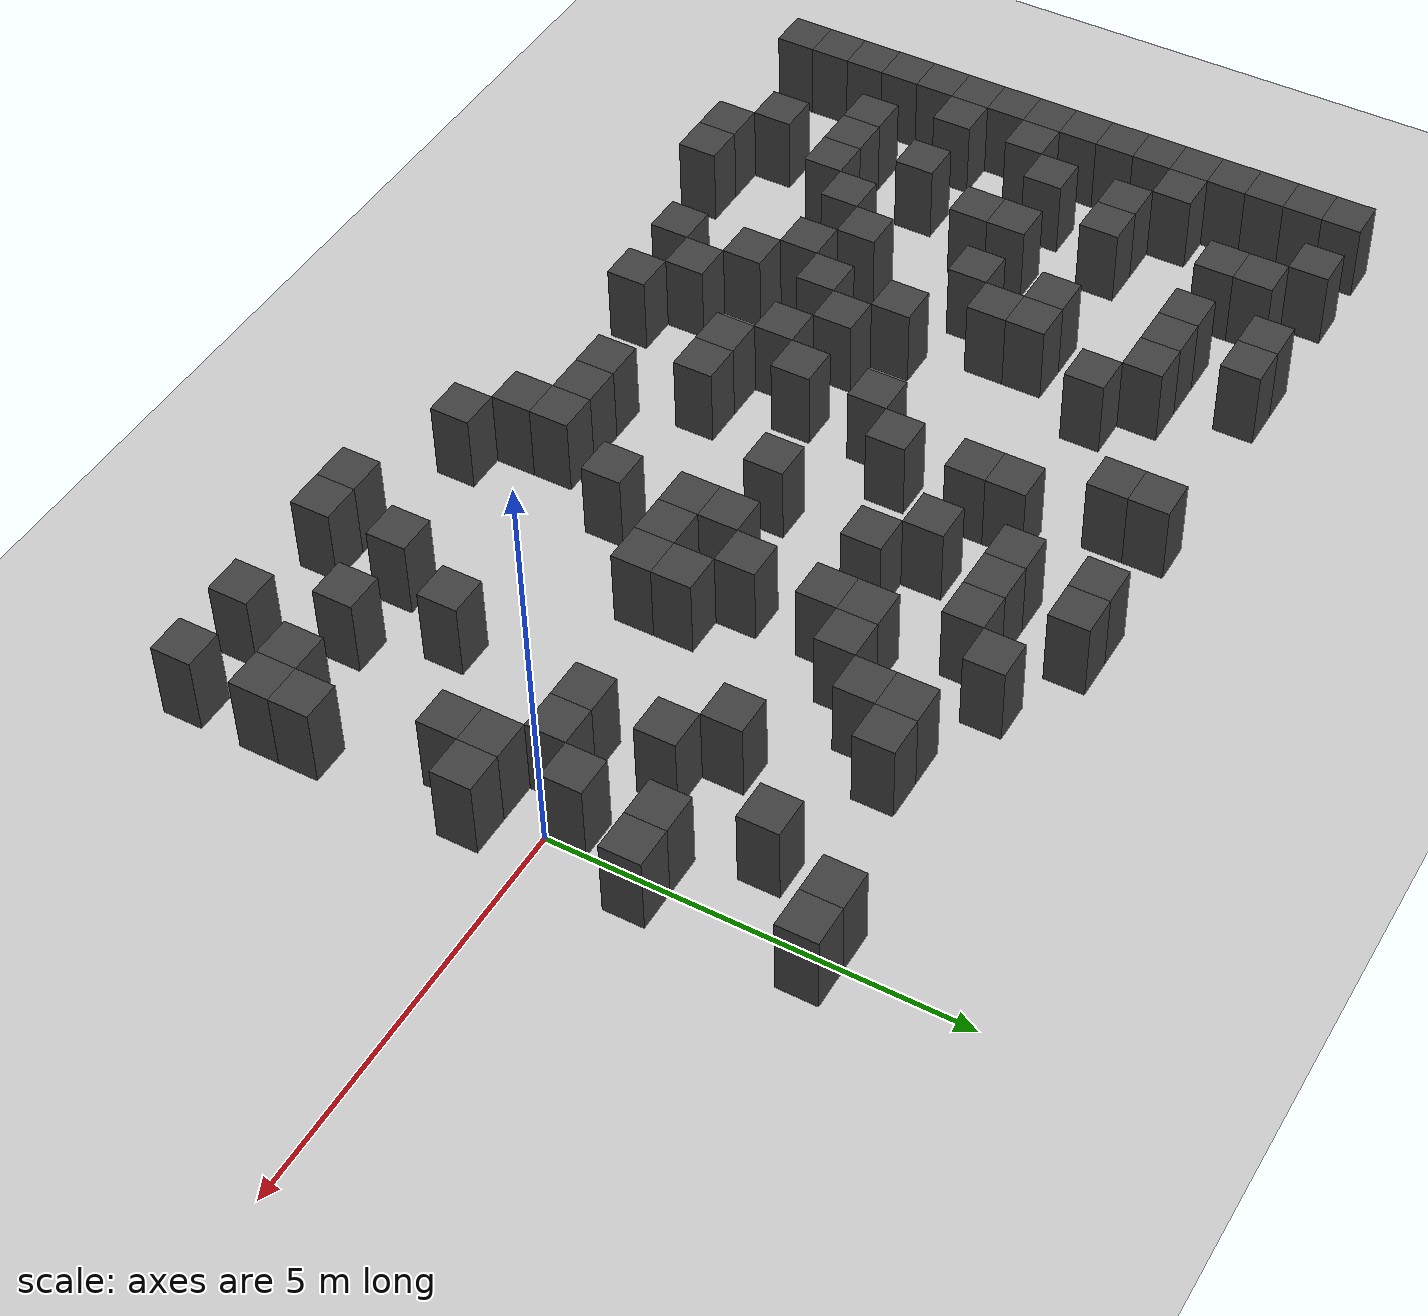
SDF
<sdf version="1.7">
 <world name="map_4390">
  <model name="ground_plane">
   <static>true</static>
   <link name="link">
    <collision name="collision">
     <geometry><plane><normal>0 0 1</normal><size>200 200</size></plane></geometry>
    </collision>
    <visual name="visual">
     <geometry><plane><normal>0 0 1</normal><size>200 200</size></plane></geometry>
     <material><ambient>0.8 0.8 0.8 1</ambient><diffuse>0.8 0.8 0.8 1</diffuse></material>
    </visual>
   </link>
  </model>
  <model name="maze_environment">
   <static>true</static>
   <link name="wall_229">
    <pose>-12.250 3.750 0.500 0 0 0</pose>
    <collision name="col"><geometry><box><size>0.5 0.5 1.0</size></box></geometry></collision>
    <visual name="vis">
     <geometry><box><size>0.5 0.5 1.0</size></box></geometry>
     <material><ambient>0.15 0.15 0.15 1</ambient><diffuse>0.25 0.25 0.25 1</diffuse></material>
    </visual>
   </link>
   <link name="wall_230">
    <pose>-11.250 3.750 0.500 0 0 0</pose>
    <collision name="col"><geometry><box><size>0.5 0.5 1.0</size></box></geometry></collision>
    <visual name="vis">
     <geometry><box><size>0.5 0.5 1.0</size></box></geometry>
     <material><ambient>0.15 0.15 0.15 1</ambient><diffuse>0.25 0.25 0.25 1</diffuse></material>
    </visual>
   </link>
   <link name="wall_231">
    <pose>-9.750 3.750 0.500 0 0 0</pose>
    <collision name="col"><geometry><box><size>0.5 0.5 1.0</size></box></geometry></collision>
    <visual name="vis">
     <geometry><box><size>0.5 0.5 1.0</size></box></geometry>
     <material><ambient>0.15 0.15 0.15 1</ambient><diffuse>0.25 0.25 0.25 1</diffuse></material>
    </visual>
   </link>
   <link name="wall_232">
    <pose>-9.250 3.750 0.500 0 0 0</pose>
    <collision name="col"><geometry><box><size>0.5 0.5 1.0</size></box></geometry></collision>
    <visual name="vis">
     <geometry><box><size>0.5 0.5 1.0</size></box></geometry>
     <material><ambient>0.15 0.15 0.15 1</ambient><diffuse>0.25 0.25 0.25 1</diffuse></material>
    </visual>
   </link>
   <link name="wall_233">
    <pose>-6.750 3.750 0.500 0 0 0</pose>
    <collision name="col"><geometry><box><size>0.5 0.5 1.0</size></box></geometry></collision>
    <visual name="vis">
     <geometry><box><size>0.5 0.5 1.0</size></box></geometry>
     <material><ambient>0.15 0.15 0.15 1</ambient><diffuse>0.25 0.25 0.25 1</diffuse></material>
    </visual>
   </link>
   <link name="wall_234">
    <pose>-5.250 3.750 0.500 0 0 0</pose>
    <collision name="col"><geometry><box><size>0.5 0.5 1.0</size></box></geometry></collision>
    <visual name="vis">
     <geometry><box><size>0.5 0.5 1.0</size></box></geometry>
     <material><ambient>0.15 0.15 0.15 1</ambient><diffuse>0.25 0.25 0.25 1</diffuse></material>
    </visual>
   </link>
   <link name="wall_235">
    <pose>-4.750 3.750 0.500 0 0 0</pose>
    <collision name="col"><geometry><box><size>0.5 0.5 1.0</size></box></geometry></collision>
    <visual name="vis">
     <geometry><box><size>0.5 0.5 1.0</size></box></geometry>
     <material><ambient>0.15 0.15 0.15 1</ambient><diffuse>0.25 0.25 0.25 1</diffuse></material>
    </visual>
   </link>
   <link name="wall_242">
    <pose>-12.250 3.250 0.500 0 0 0</pose>
    <collision name="col"><geometry><box><size>0.5 0.5 1.0</size></box></geometry></collision>
    <visual name="vis">
     <geometry><box><size>0.5 0.5 1.0</size></box></geometry>
     <material><ambient>0.15 0.15 0.15 1</ambient><diffuse>0.25 0.25 0.25 1</diffuse></material>
    </visual>
   </link>
   <link name="wall_243">
    <pose>-10.750 3.250 0.500 0 0 0</pose>
    <collision name="col"><geometry><box><size>0.5 0.5 1.0</size></box></geometry></collision>
    <visual name="vis">
     <geometry><box><size>0.5 0.5 1.0</size></box></geometry>
     <material><ambient>0.15 0.15 0.15 1</ambient><diffuse>0.25 0.25 0.25 1</diffuse></material>
    </visual>
   </link>
   <link name="wall_244">
    <pose>-6.750 3.250 0.500 0 0 0</pose>
    <collision name="col"><geometry><box><size>0.5 0.5 1.0</size></box></geometry></collision>
    <visual name="vis">
     <geometry><box><size>0.5 0.5 1.0</size></box></geometry>
     <material><ambient>0.15 0.15 0.15 1</ambient><diffuse>0.25 0.25 0.25 1</diffuse></material>
    </visual>
   </link>
   <link name="wall_245">
    <pose>-3.750 3.250 0.500 0 0 0</pose>
    <collision name="col"><geometry><box><size>0.5 0.5 1.0</size></box></geometry></collision>
    <visual name="vis">
     <geometry><box><size>0.5 0.5 1.0</size></box></geometry>
     <material><ambient>0.15 0.15 0.15 1</ambient><diffuse>0.25 0.25 0.25 1</diffuse></material>
    </visual>
   </link>
   <link name="wall_246">
    <pose>-0.250 3.250 0.500 0 0 0</pose>
    <collision name="col"><geometry><box><size>0.5 0.5 1.0</size></box></geometry></collision>
    <visual name="vis">
     <geometry><box><size>0.5 0.5 1.0</size></box></geometry>
     <material><ambient>0.15 0.15 0.15 1</ambient><diffuse>0.25 0.25 0.25 1</diffuse></material>
    </visual>
   </link>
   <link name="wall_247">
    <pose>0.250 3.250 0.500 0 0 0</pose>
    <collision name="col"><geometry><box><size>0.5 0.5 1.0</size></box></geometry></collision>
    <visual name="vis">
     <geometry><box><size>0.5 0.5 1.0</size></box></geometry>
     <material><ambient>0.15 0.15 0.15 1</ambient><diffuse>0.25 0.25 0.25 1</diffuse></material>
    </visual>
   </link>
   <link name="wall_251">
    <pose>-12.250 2.750 0.500 0 0 0</pose>
    <collision name="col"><geometry><box><size>0.5 0.5 1.0</size></box></geometry></collision>
    <visual name="vis">
     <geometry><box><size>0.5 0.5 1.0</size></box></geometry>
     <material><ambient>0.15 0.15 0.15 1</ambient><diffuse>0.25 0.25 0.25 1</diffuse></material>
    </visual>
   </link>
   <link name="wall_252">
    <pose>-10.750 2.750 0.500 0 0 0</pose>
    <collision name="col"><geometry><box><size>0.5 0.5 1.0</size></box></geometry></collision>
    <visual name="vis">
     <geometry><box><size>0.5 0.5 1.0</size></box></geometry>
     <material><ambient>0.15 0.15 0.15 1</ambient><diffuse>0.25 0.25 0.25 1</diffuse></material>
    </visual>
   </link>
   <link name="wall_253">
    <pose>-9.750 2.750 0.500 0 0 0</pose>
    <collision name="col"><geometry><box><size>0.5 0.5 1.0</size></box></geometry></collision>
    <visual name="vis">
     <geometry><box><size>0.5 0.5 1.0</size></box></geometry>
     <material><ambient>0.15 0.15 0.15 1</ambient><diffuse>0.25 0.25 0.25 1</diffuse></material>
    </visual>
   </link>
   <link name="wall_254">
    <pose>-9.250 2.750 0.500 0 0 0</pose>
    <collision name="col"><geometry><box><size>0.5 0.5 1.0</size></box></geometry></collision>
    <visual name="vis">
     <geometry><box><size>0.5 0.5 1.0</size></box></geometry>
     <material><ambient>0.15 0.15 0.15 1</ambient><diffuse>0.25 0.25 0.25 1</diffuse></material>
    </visual>
   </link>
   <link name="wall_255">
    <pose>-8.750 2.750 0.500 0 0 0</pose>
    <collision name="col"><geometry><box><size>0.5 0.5 1.0</size></box></geometry></collision>
    <visual name="vis">
     <geometry><box><size>0.5 0.5 1.0</size></box></geometry>
     <material><ambient>0.15 0.15 0.15 1</ambient><diffuse>0.25 0.25 0.25 1</diffuse></material>
    </visual>
   </link>
   <link name="wall_256">
    <pose>-5.250 2.750 0.500 0 0 0</pose>
    <collision name="col"><geometry><box><size>0.5 0.5 1.0</size></box></geometry></collision>
    <visual name="vis">
     <geometry><box><size>0.5 0.5 1.0</size></box></geometry>
     <material><ambient>0.15 0.15 0.15 1</ambient><diffuse>0.25 0.25 0.25 1</diffuse></material>
    </visual>
   </link>
   <link name="wall_257">
    <pose>-4.750 2.750 0.500 0 0 0</pose>
    <collision name="col"><geometry><box><size>0.5 0.5 1.0</size></box></geometry></collision>
    <visual name="vis">
     <geometry><box><size>0.5 0.5 1.0</size></box></geometry>
     <material><ambient>0.15 0.15 0.15 1</ambient><diffuse>0.25 0.25 0.25 1</diffuse></material>
    </visual>
   </link>
   <link name="wall_258">
    <pose>-4.250 2.750 0.500 0 0 0</pose>
    <collision name="col"><geometry><box><size>0.5 0.5 1.0</size></box></geometry></collision>
    <visual name="vis">
     <geometry><box><size>0.5 0.5 1.0</size></box></geometry>
     <material><ambient>0.15 0.15 0.15 1</ambient><diffuse>0.25 0.25 0.25 1</diffuse></material>
    </visual>
   </link>
   <link name="wall_259">
    <pose>-2.750 2.750 0.500 0 0 0</pose>
    <collision name="col"><geometry><box><size>0.5 0.5 1.0</size></box></geometry></collision>
    <visual name="vis">
     <geometry><box><size>0.5 0.5 1.0</size></box></geometry>
     <material><ambient>0.15 0.15 0.15 1</ambient><diffuse>0.25 0.25 0.25 1</diffuse></material>
    </visual>
   </link>
   <link name="wall_260">
    <pose>-2.250 2.750 0.500 0 0 0</pose>
    <collision name="col"><geometry><box><size>0.5 0.5 1.0</size></box></geometry></collision>
    <visual name="vis">
     <geometry><box><size>0.5 0.5 1.0</size></box></geometry>
     <material><ambient>0.15 0.15 0.15 1</ambient><diffuse>0.25 0.25 0.25 1</diffuse></material>
    </visual>
   </link>
   <link name="wall_268">
    <pose>-12.250 2.250 0.500 0 0 0</pose>
    <collision name="col"><geometry><box><size>0.5 0.5 1.0</size></box></geometry></collision>
    <visual name="vis">
     <geometry><box><size>0.5 0.5 1.0</size></box></geometry>
     <material><ambient>0.15 0.15 0.15 1</ambient><diffuse>0.25 0.25 0.25 1</diffuse></material>
    </visual>
   </link>
   <link name="wall_269">
    <pose>-8.250 2.250 0.500 0 0 0</pose>
    <collision name="col"><geometry><box><size>0.5 0.5 1.0</size></box></geometry></collision>
    <visual name="vis">
     <geometry><box><size>0.5 0.5 1.0</size></box></geometry>
     <material><ambient>0.15 0.15 0.15 1</ambient><diffuse>0.25 0.25 0.25 1</diffuse></material>
    </visual>
   </link>
   <link name="wall_270">
    <pose>-6.250 2.250 0.500 0 0 0</pose>
    <collision name="col"><geometry><box><size>0.5 0.5 1.0</size></box></geometry></collision>
    <visual name="vis">
     <geometry><box><size>0.5 0.5 1.0</size></box></geometry>
     <material><ambient>0.15 0.15 0.15 1</ambient><diffuse>0.25 0.25 0.25 1</diffuse></material>
    </visual>
   </link>
   <link name="wall_271">
    <pose>-2.750 2.250 0.500 0 0 0</pose>
    <collision name="col"><geometry><box><size>0.5 0.5 1.0</size></box></geometry></collision>
    <visual name="vis">
     <geometry><box><size>0.5 0.5 1.0</size></box></geometry>
     <material><ambient>0.15 0.15 0.15 1</ambient><diffuse>0.25 0.25 0.25 1</diffuse></material>
    </visual>
   </link>
   <link name="wall_272">
    <pose>-0.750 2.250 0.500 0 0 0</pose>
    <collision name="col"><geometry><box><size>0.5 0.5 1.0</size></box></geometry></collision>
    <visual name="vis">
     <geometry><box><size>0.5 0.5 1.0</size></box></geometry>
     <material><ambient>0.15 0.15 0.15 1</ambient><diffuse>0.25 0.25 0.25 1</diffuse></material>
    </visual>
   </link>
   <link name="wall_279">
    <pose>-12.250 1.750 0.500 0 0 0</pose>
    <collision name="col"><geometry><box><size>0.5 0.5 1.0</size></box></geometry></collision>
    <visual name="vis">
     <geometry><box><size>0.5 0.5 1.0</size></box></geometry>
     <material><ambient>0.15 0.15 0.15 1</ambient><diffuse>0.25 0.25 0.25 1</diffuse></material>
    </visual>
   </link>
   <link name="wall_280">
    <pose>-11.750 1.750 0.500 0 0 0</pose>
    <collision name="col"><geometry><box><size>0.5 0.5 1.0</size></box></geometry></collision>
    <visual name="vis">
     <geometry><box><size>0.5 0.5 1.0</size></box></geometry>
     <material><ambient>0.15 0.15 0.15 1</ambient><diffuse>0.25 0.25 0.25 1</diffuse></material>
    </visual>
   </link>
   <link name="wall_281">
    <pose>-6.250 1.750 0.500 0 0 0</pose>
    <collision name="col"><geometry><box><size>0.5 0.5 1.0</size></box></geometry></collision>
    <visual name="vis">
     <geometry><box><size>0.5 0.5 1.0</size></box></geometry>
     <material><ambient>0.15 0.15 0.15 1</ambient><diffuse>0.25 0.25 0.25 1</diffuse></material>
    </visual>
   </link>
   <link name="wall_282">
    <pose>-5.250 1.750 0.500 0 0 0</pose>
    <collision name="col"><geometry><box><size>0.5 0.5 1.0</size></box></geometry></collision>
    <visual name="vis">
     <geometry><box><size>0.5 0.5 1.0</size></box></geometry>
     <material><ambient>0.15 0.15 0.15 1</ambient><diffuse>0.25 0.25 0.25 1</diffuse></material>
    </visual>
   </link>
   <link name="wall_283">
    <pose>-3.750 1.750 0.500 0 0 0</pose>
    <collision name="col"><geometry><box><size>0.5 0.5 1.0</size></box></geometry></collision>
    <visual name="vis">
     <geometry><box><size>0.5 0.5 1.0</size></box></geometry>
     <material><ambient>0.15 0.15 0.15 1</ambient><diffuse>0.25 0.25 0.25 1</diffuse></material>
    </visual>
   </link>
   <link name="wall_284">
    <pose>-3.250 1.750 0.500 0 0 0</pose>
    <collision name="col"><geometry><box><size>0.5 0.5 1.0</size></box></geometry></collision>
    <visual name="vis">
     <geometry><box><size>0.5 0.5 1.0</size></box></geometry>
     <material><ambient>0.15 0.15 0.15 1</ambient><diffuse>0.25 0.25 0.25 1</diffuse></material>
    </visual>
   </link>
   <link name="wall_289">
    <pose>-12.250 1.250 0.500 0 0 0</pose>
    <collision name="col"><geometry><box><size>0.5 0.5 1.0</size></box></geometry></collision>
    <visual name="vis">
     <geometry><box><size>0.5 0.5 1.0</size></box></geometry>
     <material><ambient>0.15 0.15 0.15 1</ambient><diffuse>0.25 0.25 0.25 1</diffuse></material>
    </visual>
   </link>
   <link name="wall_290">
    <pose>-11.250 1.250 0.500 0 0 0</pose>
    <collision name="col"><geometry><box><size>0.5 0.5 1.0</size></box></geometry></collision>
    <visual name="vis">
     <geometry><box><size>0.5 0.5 1.0</size></box></geometry>
     <material><ambient>0.15 0.15 0.15 1</ambient><diffuse>0.25 0.25 0.25 1</diffuse></material>
    </visual>
   </link>
   <link name="wall_291">
    <pose>-10.750 1.250 0.500 0 0 0</pose>
    <collision name="col"><geometry><box><size>0.5 0.5 1.0</size></box></geometry></collision>
    <visual name="vis">
     <geometry><box><size>0.5 0.5 1.0</size></box></geometry>
     <material><ambient>0.15 0.15 0.15 1</ambient><diffuse>0.25 0.25 0.25 1</diffuse></material>
    </visual>
   </link>
   <link name="wall_292">
    <pose>-9.250 1.250 0.500 0 0 0</pose>
    <collision name="col"><geometry><box><size>0.5 0.5 1.0</size></box></geometry></collision>
    <visual name="vis">
     <geometry><box><size>0.5 0.5 1.0</size></box></geometry>
     <material><ambient>0.15 0.15 0.15 1</ambient><diffuse>0.25 0.25 0.25 1</diffuse></material>
    </visual>
   </link>
   <link name="wall_293">
    <pose>-8.750 1.250 0.500 0 0 0</pose>
    <collision name="col"><geometry><box><size>0.5 0.5 1.0</size></box></geometry></collision>
    <visual name="vis">
     <geometry><box><size>0.5 0.5 1.0</size></box></geometry>
     <material><ambient>0.15 0.15 0.15 1</ambient><diffuse>0.25 0.25 0.25 1</diffuse></material>
    </visual>
   </link>
   <link name="wall_294">
    <pose>-4.750 1.250 0.500 0 0 0</pose>
    <collision name="col"><geometry><box><size>0.5 0.5 1.0</size></box></geometry></collision>
    <visual name="vis">
     <geometry><box><size>0.5 0.5 1.0</size></box></geometry>
     <material><ambient>0.15 0.15 0.15 1</ambient><diffuse>0.25 0.25 0.25 1</diffuse></material>
    </visual>
   </link>
   <link name="wall_295">
    <pose>-3.750 1.250 0.500 0 0 0</pose>
    <collision name="col"><geometry><box><size>0.5 0.5 1.0</size></box></geometry></collision>
    <visual name="vis">
     <geometry><box><size>0.5 0.5 1.0</size></box></geometry>
     <material><ambient>0.15 0.15 0.15 1</ambient><diffuse>0.25 0.25 0.25 1</diffuse></material>
    </visual>
   </link>
   <link name="wall_296">
    <pose>-1.750 1.250 0.500 0 0 0</pose>
    <collision name="col"><geometry><box><size>0.5 0.5 1.0</size></box></geometry></collision>
    <visual name="vis">
     <geometry><box><size>0.5 0.5 1.0</size></box></geometry>
     <material><ambient>0.15 0.15 0.15 1</ambient><diffuse>0.25 0.25 0.25 1</diffuse></material>
    </visual>
   </link>
   <link name="wall_297">
    <pose>-0.250 1.250 0.500 0 0 0</pose>
    <collision name="col"><geometry><box><size>0.5 0.5 1.0</size></box></geometry></collision>
    <visual name="vis">
     <geometry><box><size>0.5 0.5 1.0</size></box></geometry>
     <material><ambient>0.15 0.15 0.15 1</ambient><diffuse>0.25 0.25 0.25 1</diffuse></material>
    </visual>
   </link>
   <link name="wall_298">
    <pose>0.250 1.250 0.500 0 0 0</pose>
    <collision name="col"><geometry><box><size>0.5 0.5 1.0</size></box></geometry></collision>
    <visual name="vis">
     <geometry><box><size>0.5 0.5 1.0</size></box></geometry>
     <material><ambient>0.15 0.15 0.15 1</ambient><diffuse>0.25 0.25 0.25 1</diffuse></material>
    </visual>
   </link>
   <link name="wall_303">
    <pose>-12.250 0.750 0.500 0 0 0</pose>
    <collision name="col"><geometry><box><size>0.5 0.5 1.0</size></box></geometry></collision>
    <visual name="vis">
     <geometry><box><size>0.5 0.5 1.0</size></box></geometry>
     <material><ambient>0.15 0.15 0.15 1</ambient><diffuse>0.25 0.25 0.25 1</diffuse></material>
    </visual>
   </link>
   <link name="wall_304">
    <pose>-8.750 0.750 0.500 0 0 0</pose>
    <collision name="col"><geometry><box><size>0.5 0.5 1.0</size></box></geometry></collision>
    <visual name="vis">
     <geometry><box><size>0.5 0.5 1.0</size></box></geometry>
     <material><ambient>0.15 0.15 0.15 1</ambient><diffuse>0.25 0.25 0.25 1</diffuse></material>
    </visual>
   </link>
   <link name="wall_305">
    <pose>-6.250 0.750 0.500 0 0 0</pose>
    <collision name="col"><geometry><box><size>0.5 0.5 1.0</size></box></geometry></collision>
    <visual name="vis">
     <geometry><box><size>0.5 0.5 1.0</size></box></geometry>
     <material><ambient>0.15 0.15 0.15 1</ambient><diffuse>0.25 0.25 0.25 1</diffuse></material>
    </visual>
   </link>
   <link name="wall_306">
    <pose>-1.250 0.750 0.500 0 0 0</pose>
    <collision name="col"><geometry><box><size>0.5 0.5 1.0</size></box></geometry></collision>
    <visual name="vis">
     <geometry><box><size>0.5 0.5 1.0</size></box></geometry>
     <material><ambient>0.15 0.15 0.15 1</ambient><diffuse>0.25 0.25 0.25 1</diffuse></material>
    </visual>
   </link>
   <link name="wall_315">
    <pose>-12.250 0.250 0.500 0 0 0</pose>
    <collision name="col"><geometry><box><size>0.5 0.5 1.0</size></box></geometry></collision>
    <visual name="vis">
     <geometry><box><size>0.5 0.5 1.0</size></box></geometry>
     <material><ambient>0.15 0.15 0.15 1</ambient><diffuse>0.25 0.25 0.25 1</diffuse></material>
    </visual>
   </link>
   <link name="wall_316">
    <pose>-11.250 0.250 0.500 0 0 0</pose>
    <collision name="col"><geometry><box><size>0.5 0.5 1.0</size></box></geometry></collision>
    <visual name="vis">
     <geometry><box><size>0.5 0.5 1.0</size></box></geometry>
     <material><ambient>0.15 0.15 0.15 1</ambient><diffuse>0.25 0.25 0.25 1</diffuse></material>
    </visual>
   </link>
   <link name="wall_317">
    <pose>-10.250 0.250 0.500 0 0 0</pose>
    <collision name="col"><geometry><box><size>0.5 0.5 1.0</size></box></geometry></collision>
    <visual name="vis">
     <geometry><box><size>0.5 0.5 1.0</size></box></geometry>
     <material><ambient>0.15 0.15 0.15 1</ambient><diffuse>0.25 0.25 0.25 1</diffuse></material>
    </visual>
   </link>
   <link name="wall_318">
    <pose>-9.250 0.250 0.500 0 0 0</pose>
    <collision name="col"><geometry><box><size>0.5 0.5 1.0</size></box></geometry></collision>
    <visual name="vis">
     <geometry><box><size>0.5 0.5 1.0</size></box></geometry>
     <material><ambient>0.15 0.15 0.15 1</ambient><diffuse>0.25 0.25 0.25 1</diffuse></material>
    </visual>
   </link>
   <link name="wall_319">
    <pose>-6.750 0.250 0.500 0 0 0</pose>
    <collision name="col"><geometry><box><size>0.5 0.5 1.0</size></box></geometry></collision>
    <visual name="vis">
     <geometry><box><size>0.5 0.5 1.0</size></box></geometry>
     <material><ambient>0.15 0.15 0.15 1</ambient><diffuse>0.25 0.25 0.25 1</diffuse></material>
    </visual>
   </link>
   <link name="wall_320">
    <pose>-3.750 0.250 0.500 0 0 0</pose>
    <collision name="col"><geometry><box><size>0.5 0.5 1.0</size></box></geometry></collision>
    <visual name="vis">
     <geometry><box><size>0.5 0.5 1.0</size></box></geometry>
     <material><ambient>0.15 0.15 0.15 1</ambient><diffuse>0.25 0.25 0.25 1</diffuse></material>
    </visual>
   </link>
   <link name="wall_321">
    <pose>-0.250 0.250 0.500 0 0 0</pose>
    <collision name="col"><geometry><box><size>0.5 0.5 1.0</size></box></geometry></collision>
    <visual name="vis">
     <geometry><box><size>0.5 0.5 1.0</size></box></geometry>
     <material><ambient>0.15 0.15 0.15 1</ambient><diffuse>0.25 0.25 0.25 1</diffuse></material>
    </visual>
   </link>
   <link name="wall_324">
    <pose>-12.250 -0.250 0.500 0 0 0</pose>
    <collision name="col"><geometry><box><size>0.5 0.5 1.0</size></box></geometry></collision>
    <visual name="vis">
     <geometry><box><size>0.5 0.5 1.0</size></box></geometry>
     <material><ambient>0.15 0.15 0.15 1</ambient><diffuse>0.25 0.25 0.25 1</diffuse></material>
    </visual>
   </link>
   <link name="wall_325">
    <pose>-11.750 -0.250 0.500 0 0 0</pose>
    <collision name="col"><geometry><box><size>0.5 0.5 1.0</size></box></geometry></collision>
    <visual name="vis">
     <geometry><box><size>0.5 0.5 1.0</size></box></geometry>
     <material><ambient>0.15 0.15 0.15 1</ambient><diffuse>0.25 0.25 0.25 1</diffuse></material>
    </visual>
   </link>
   <link name="wall_326">
    <pose>-10.250 -0.250 0.500 0 0 0</pose>
    <collision name="col"><geometry><box><size>0.5 0.5 1.0</size></box></geometry></collision>
    <visual name="vis">
     <geometry><box><size>0.5 0.5 1.0</size></box></geometry>
     <material><ambient>0.15 0.15 0.15 1</ambient><diffuse>0.25 0.25 0.25 1</diffuse></material>
    </visual>
   </link>
   <link name="wall_327">
    <pose>-8.250 -0.250 0.500 0 0 0</pose>
    <collision name="col"><geometry><box><size>0.5 0.5 1.0</size></box></geometry></collision>
    <visual name="vis">
     <geometry><box><size>0.5 0.5 1.0</size></box></geometry>
     <material><ambient>0.15 0.15 0.15 1</ambient><diffuse>0.25 0.25 0.25 1</diffuse></material>
    </visual>
   </link>
   <link name="wall_328">
    <pose>-5.250 -0.250 0.500 0 0 0</pose>
    <collision name="col"><geometry><box><size>0.5 0.5 1.0</size></box></geometry></collision>
    <visual name="vis">
     <geometry><box><size>0.5 0.5 1.0</size></box></geometry>
     <material><ambient>0.15 0.15 0.15 1</ambient><diffuse>0.25 0.25 0.25 1</diffuse></material>
    </visual>
   </link>
   <link name="wall_329">
    <pose>-4.250 -0.250 0.500 0 0 0</pose>
    <collision name="col"><geometry><box><size>0.5 0.5 1.0</size></box></geometry></collision>
    <visual name="vis">
     <geometry><box><size>0.5 0.5 1.0</size></box></geometry>
     <material><ambient>0.15 0.15 0.15 1</ambient><diffuse>0.25 0.25 0.25 1</diffuse></material>
    </visual>
   </link>
   <link name="wall_330">
    <pose>-3.250 -0.250 0.500 0 0 0</pose>
    <collision name="col"><geometry><box><size>0.5 0.5 1.0</size></box></geometry></collision>
    <visual name="vis">
     <geometry><box><size>0.5 0.5 1.0</size></box></geometry>
     <material><ambient>0.15 0.15 0.15 1</ambient><diffuse>0.25 0.25 0.25 1</diffuse></material>
    </visual>
   </link>
   <link name="wall_331">
    <pose>-1.250 -0.250 0.500 0 0 0</pose>
    <collision name="col"><geometry><box><size>0.5 0.5 1.0</size></box></geometry></collision>
    <visual name="vis">
     <geometry><box><size>0.5 0.5 1.0</size></box></geometry>
     <material><ambient>0.15 0.15 0.15 1</ambient><diffuse>0.25 0.25 0.25 1</diffuse></material>
    </visual>
   </link>
   <link name="wall_332">
    <pose>-0.750 -0.250 0.500 0 0 0</pose>
    <collision name="col"><geometry><box><size>0.5 0.5 1.0</size></box></geometry></collision>
    <visual name="vis">
     <geometry><box><size>0.5 0.5 1.0</size></box></geometry>
     <material><ambient>0.15 0.15 0.15 1</ambient><diffuse>0.25 0.25 0.25 1</diffuse></material>
    </visual>
   </link>
   <link name="wall_339">
    <pose>-12.250 -0.750 0.500 0 0 0</pose>
    <collision name="col"><geometry><box><size>0.5 0.5 1.0</size></box></geometry></collision>
    <visual name="vis">
     <geometry><box><size>0.5 0.5 1.0</size></box></geometry>
     <material><ambient>0.15 0.15 0.15 1</ambient><diffuse>0.25 0.25 0.25 1</diffuse></material>
    </visual>
   </link>
   <link name="wall_340">
    <pose>-7.750 -0.750 0.500 0 0 0</pose>
    <collision name="col"><geometry><box><size>0.5 0.5 1.0</size></box></geometry></collision>
    <visual name="vis">
     <geometry><box><size>0.5 0.5 1.0</size></box></geometry>
     <material><ambient>0.15 0.15 0.15 1</ambient><diffuse>0.25 0.25 0.25 1</diffuse></material>
    </visual>
   </link>
   <link name="wall_341">
    <pose>-6.750 -0.750 0.500 0 0 0</pose>
    <collision name="col"><geometry><box><size>0.5 0.5 1.0</size></box></geometry></collision>
    <visual name="vis">
     <geometry><box><size>0.5 0.5 1.0</size></box></geometry>
     <material><ambient>0.15 0.15 0.15 1</ambient><diffuse>0.25 0.25 0.25 1</diffuse></material>
    </visual>
   </link>
   <link name="wall_342">
    <pose>-4.250 -0.750 0.500 0 0 0</pose>
    <collision name="col"><geometry><box><size>0.5 0.5 1.0</size></box></geometry></collision>
    <visual name="vis">
     <geometry><box><size>0.5 0.5 1.0</size></box></geometry>
     <material><ambient>0.15 0.15 0.15 1</ambient><diffuse>0.25 0.25 0.25 1</diffuse></material>
    </visual>
   </link>
   <link name="wall_343">
    <pose>-3.750 -0.750 0.500 0 0 0</pose>
    <collision name="col"><geometry><box><size>0.5 0.5 1.0</size></box></geometry></collision>
    <visual name="vis">
     <geometry><box><size>0.5 0.5 1.0</size></box></geometry>
     <material><ambient>0.15 0.15 0.15 1</ambient><diffuse>0.25 0.25 0.25 1</diffuse></material>
    </visual>
   </link>
   <link name="wall_344">
    <pose>-3.250 -0.750 0.500 0 0 0</pose>
    <collision name="col"><geometry><box><size>0.5 0.5 1.0</size></box></geometry></collision>
    <visual name="vis">
     <geometry><box><size>0.5 0.5 1.0</size></box></geometry>
     <material><ambient>0.15 0.15 0.15 1</ambient><diffuse>0.25 0.25 0.25 1</diffuse></material>
    </visual>
   </link>
   <link name="wall_345">
    <pose>-0.250 -0.750 0.500 0 0 0</pose>
    <collision name="col"><geometry><box><size>0.5 0.5 1.0</size></box></geometry></collision>
    <visual name="vis">
     <geometry><box><size>0.5 0.5 1.0</size></box></geometry>
     <material><ambient>0.15 0.15 0.15 1</ambient><diffuse>0.25 0.25 0.25 1</diffuse></material>
    </visual>
   </link>
   <link name="wall_346">
    <pose>0.250 -0.750 0.500 0 0 0</pose>
    <collision name="col"><geometry><box><size>0.5 0.5 1.0</size></box></geometry></collision>
    <visual name="vis">
     <geometry><box><size>0.5 0.5 1.0</size></box></geometry>
     <material><ambient>0.15 0.15 0.15 1</ambient><diffuse>0.25 0.25 0.25 1</diffuse></material>
    </visual>
   </link>
   <link name="wall_353">
    <pose>-12.250 -1.250 0.500 0 0 0</pose>
    <collision name="col"><geometry><box><size>0.5 0.5 1.0</size></box></geometry></collision>
    <visual name="vis">
     <geometry><box><size>0.5 0.5 1.0</size></box></geometry>
     <material><ambient>0.15 0.15 0.15 1</ambient><diffuse>0.25 0.25 0.25 1</diffuse></material>
    </visual>
   </link>
   <link name="wall_354">
    <pose>-11.750 -1.250 0.500 0 0 0</pose>
    <collision name="col"><geometry><box><size>0.5 0.5 1.0</size></box></geometry></collision>
    <visual name="vis">
     <geometry><box><size>0.5 0.5 1.0</size></box></geometry>
     <material><ambient>0.15 0.15 0.15 1</ambient><diffuse>0.25 0.25 0.25 1</diffuse></material>
    </visual>
   </link>
   <link name="wall_355">
    <pose>-10.750 -1.250 0.500 0 0 0</pose>
    <collision name="col"><geometry><box><size>0.5 0.5 1.0</size></box></geometry></collision>
    <visual name="vis">
     <geometry><box><size>0.5 0.5 1.0</size></box></geometry>
     <material><ambient>0.15 0.15 0.15 1</ambient><diffuse>0.25 0.25 0.25 1</diffuse></material>
    </visual>
   </link>
   <link name="wall_356">
    <pose>-9.250 -1.250 0.500 0 0 0</pose>
    <collision name="col"><geometry><box><size>0.5 0.5 1.0</size></box></geometry></collision>
    <visual name="vis">
     <geometry><box><size>0.5 0.5 1.0</size></box></geometry>
     <material><ambient>0.15 0.15 0.15 1</ambient><diffuse>0.25 0.25 0.25 1</diffuse></material>
    </visual>
   </link>
   <link name="wall_357">
    <pose>-8.250 -1.250 0.500 0 0 0</pose>
    <collision name="col"><geometry><box><size>0.5 0.5 1.0</size></box></geometry></collision>
    <visual name="vis">
     <geometry><box><size>0.5 0.5 1.0</size></box></geometry>
     <material><ambient>0.15 0.15 0.15 1</ambient><diffuse>0.25 0.25 0.25 1</diffuse></material>
    </visual>
   </link>
   <link name="wall_358">
    <pose>-7.250 -1.250 0.500 0 0 0</pose>
    <collision name="col"><geometry><box><size>0.5 0.5 1.0</size></box></geometry></collision>
    <visual name="vis">
     <geometry><box><size>0.5 0.5 1.0</size></box></geometry>
     <material><ambient>0.15 0.15 0.15 1</ambient><diffuse>0.25 0.25 0.25 1</diffuse></material>
    </visual>
   </link>
   <link name="wall_359">
    <pose>-0.250 -1.250 0.500 0 0 0</pose>
    <collision name="col"><geometry><box><size>0.5 0.5 1.0</size></box></geometry></collision>
    <visual name="vis">
     <geometry><box><size>0.5 0.5 1.0</size></box></geometry>
     <material><ambient>0.15 0.15 0.15 1</ambient><diffuse>0.25 0.25 0.25 1</diffuse></material>
    </visual>
   </link>
   <link name="wall_368">
    <pose>-12.250 -1.750 0.500 0 0 0</pose>
    <collision name="col"><geometry><box><size>0.5 0.5 1.0</size></box></geometry></collision>
    <visual name="vis">
     <geometry><box><size>0.5 0.5 1.0</size></box></geometry>
     <material><ambient>0.15 0.15 0.15 1</ambient><diffuse>0.25 0.25 0.25 1</diffuse></material>
    </visual>
   </link>
   <link name="wall_369">
    <pose>-9.750 -1.750 0.500 0 0 0</pose>
    <collision name="col"><geometry><box><size>0.5 0.5 1.0</size></box></geometry></collision>
    <visual name="vis">
     <geometry><box><size>0.5 0.5 1.0</size></box></geometry>
     <material><ambient>0.15 0.15 0.15 1</ambient><diffuse>0.25 0.25 0.25 1</diffuse></material>
    </visual>
   </link>
   <link name="wall_370">
    <pose>-8.750 -1.750 0.500 0 0 0</pose>
    <collision name="col"><geometry><box><size>0.5 0.5 1.0</size></box></geometry></collision>
    <visual name="vis">
     <geometry><box><size>0.5 0.5 1.0</size></box></geometry>
     <material><ambient>0.15 0.15 0.15 1</ambient><diffuse>0.25 0.25 0.25 1</diffuse></material>
    </visual>
   </link>
   <link name="wall_371">
    <pose>-6.750 -1.750 0.500 0 0 0</pose>
    <collision name="col"><geometry><box><size>0.5 0.5 1.0</size></box></geometry></collision>
    <visual name="vis">
     <geometry><box><size>0.5 0.5 1.0</size></box></geometry>
     <material><ambient>0.15 0.15 0.15 1</ambient><diffuse>0.25 0.25 0.25 1</diffuse></material>
    </visual>
   </link>
   <link name="wall_372">
    <pose>-6.250 -1.750 0.500 0 0 0</pose>
    <collision name="col"><geometry><box><size>0.5 0.5 1.0</size></box></geometry></collision>
    <visual name="vis">
     <geometry><box><size>0.5 0.5 1.0</size></box></geometry>
     <material><ambient>0.15 0.15 0.15 1</ambient><diffuse>0.25 0.25 0.25 1</diffuse></material>
    </visual>
   </link>
   <link name="wall_373">
    <pose>-4.250 -1.750 0.500 0 0 0</pose>
    <collision name="col"><geometry><box><size>0.5 0.5 1.0</size></box></geometry></collision>
    <visual name="vis">
     <geometry><box><size>0.5 0.5 1.0</size></box></geometry>
     <material><ambient>0.15 0.15 0.15 1</ambient><diffuse>0.25 0.25 0.25 1</diffuse></material>
    </visual>
   </link>
   <link name="wall_381">
    <pose>-12.250 -2.250 0.500 0 0 0</pose>
    <collision name="col"><geometry><box><size>0.5 0.5 1.0</size></box></geometry></collision>
    <visual name="vis">
     <geometry><box><size>0.5 0.5 1.0</size></box></geometry>
     <material><ambient>0.15 0.15 0.15 1</ambient><diffuse>0.25 0.25 0.25 1</diffuse></material>
    </visual>
   </link>
   <link name="wall_382">
    <pose>-11.250 -2.250 0.500 0 0 0</pose>
    <collision name="col"><geometry><box><size>0.5 0.5 1.0</size></box></geometry></collision>
    <visual name="vis">
     <geometry><box><size>0.5 0.5 1.0</size></box></geometry>
     <material><ambient>0.15 0.15 0.15 1</ambient><diffuse>0.25 0.25 0.25 1</diffuse></material>
    </visual>
   </link>
   <link name="wall_383">
    <pose>-10.750 -2.250 0.500 0 0 0</pose>
    <collision name="col"><geometry><box><size>0.5 0.5 1.0</size></box></geometry></collision>
    <visual name="vis">
     <geometry><box><size>0.5 0.5 1.0</size></box></geometry>
     <material><ambient>0.15 0.15 0.15 1</ambient><diffuse>0.25 0.25 0.25 1</diffuse></material>
    </visual>
   </link>
   <link name="wall_384">
    <pose>-10.250 -2.250 0.500 0 0 0</pose>
    <collision name="col"><geometry><box><size>0.5 0.5 1.0</size></box></geometry></collision>
    <visual name="vis">
     <geometry><box><size>0.5 0.5 1.0</size></box></geometry>
     <material><ambient>0.15 0.15 0.15 1</ambient><diffuse>0.25 0.25 0.25 1</diffuse></material>
    </visual>
   </link>
   <link name="wall_385">
    <pose>-8.250 -2.250 0.500 0 0 0</pose>
    <collision name="col"><geometry><box><size>0.5 0.5 1.0</size></box></geometry></collision>
    <visual name="vis">
     <geometry><box><size>0.5 0.5 1.0</size></box></geometry>
     <material><ambient>0.15 0.15 0.15 1</ambient><diffuse>0.25 0.25 0.25 1</diffuse></material>
    </visual>
   </link>
   <link name="wall_386">
    <pose>-1.750 -2.250 0.500 0 0 0</pose>
    <collision name="col"><geometry><box><size>0.5 0.5 1.0</size></box></geometry></collision>
    <visual name="vis">
     <geometry><box><size>0.5 0.5 1.0</size></box></geometry>
     <material><ambient>0.15 0.15 0.15 1</ambient><diffuse>0.25 0.25 0.25 1</diffuse></material>
    </visual>
   </link>
   <link name="wall_396">
    <pose>-12.250 -2.750 0.500 0 0 0</pose>
    <collision name="col"><geometry><box><size>0.5 0.5 1.0</size></box></geometry></collision>
    <visual name="vis">
     <geometry><box><size>0.5 0.5 1.0</size></box></geometry>
     <material><ambient>0.15 0.15 0.15 1</ambient><diffuse>0.25 0.25 0.25 1</diffuse></material>
    </visual>
   </link>
   <link name="wall_397">
    <pose>-7.750 -2.750 0.500 0 0 0</pose>
    <collision name="col"><geometry><box><size>0.5 0.5 1.0</size></box></geometry></collision>
    <visual name="vis">
     <geometry><box><size>0.5 0.5 1.0</size></box></geometry>
     <material><ambient>0.15 0.15 0.15 1</ambient><diffuse>0.25 0.25 0.25 1</diffuse></material>
    </visual>
   </link>
   <link name="wall_398">
    <pose>-5.750 -2.750 0.500 0 0 0</pose>
    <collision name="col"><geometry><box><size>0.5 0.5 1.0</size></box></geometry></collision>
    <visual name="vis">
     <geometry><box><size>0.5 0.5 1.0</size></box></geometry>
     <material><ambient>0.15 0.15 0.15 1</ambient><diffuse>0.25 0.25 0.25 1</diffuse></material>
    </visual>
   </link>
   <link name="wall_399">
    <pose>-5.250 -2.750 0.500 0 0 0</pose>
    <collision name="col"><geometry><box><size>0.5 0.5 1.0</size></box></geometry></collision>
    <visual name="vis">
     <geometry><box><size>0.5 0.5 1.0</size></box></geometry>
     <material><ambient>0.15 0.15 0.15 1</ambient><diffuse>0.25 0.25 0.25 1</diffuse></material>
    </visual>
   </link>
   <link name="wall_400">
    <pose>-4.750 -2.750 0.500 0 0 0</pose>
    <collision name="col"><geometry><box><size>0.5 0.5 1.0</size></box></geometry></collision>
    <visual name="vis">
     <geometry><box><size>0.5 0.5 1.0</size></box></geometry>
     <material><ambient>0.15 0.15 0.15 1</ambient><diffuse>0.25 0.25 0.25 1</diffuse></material>
    </visual>
   </link>
   <link name="wall_401">
    <pose>0.250 -2.750 0.500 0 0 0</pose>
    <collision name="col"><geometry><box><size>0.5 0.5 1.0</size></box></geometry></collision>
    <visual name="vis">
     <geometry><box><size>0.5 0.5 1.0</size></box></geometry>
     <material><ambient>0.15 0.15 0.15 1</ambient><diffuse>0.25 0.25 0.25 1</diffuse></material>
    </visual>
   </link>
   <link name="wall_406">
    <pose>-12.250 -3.250 0.500 0 0 0</pose>
    <collision name="col"><geometry><box><size>0.5 0.5 1.0</size></box></geometry></collision>
    <visual name="vis">
     <geometry><box><size>0.5 0.5 1.0</size></box></geometry>
     <material><ambient>0.15 0.15 0.15 1</ambient><diffuse>0.25 0.25 0.25 1</diffuse></material>
    </visual>
   </link>
   <link name="wall_407">
    <pose>-10.750 -3.250 0.500 0 0 0</pose>
    <collision name="col"><geometry><box><size>0.5 0.5 1.0</size></box></geometry></collision>
    <visual name="vis">
     <geometry><box><size>0.5 0.5 1.0</size></box></geometry>
     <material><ambient>0.15 0.15 0.15 1</ambient><diffuse>0.25 0.25 0.25 1</diffuse></material>
    </visual>
   </link>
   <link name="wall_408">
    <pose>-8.250 -3.250 0.500 0 0 0</pose>
    <collision name="col"><geometry><box><size>0.5 0.5 1.0</size></box></geometry></collision>
    <visual name="vis">
     <geometry><box><size>0.5 0.5 1.0</size></box></geometry>
     <material><ambient>0.15 0.15 0.15 1</ambient><diffuse>0.25 0.25 0.25 1</diffuse></material>
    </visual>
   </link>
   <link name="wall_409">
    <pose>-7.250 -3.250 0.500 0 0 0</pose>
    <collision name="col"><geometry><box><size>0.5 0.5 1.0</size></box></geometry></collision>
    <visual name="vis">
     <geometry><box><size>0.5 0.5 1.0</size></box></geometry>
     <material><ambient>0.15 0.15 0.15 1</ambient><diffuse>0.25 0.25 0.25 1</diffuse></material>
    </visual>
   </link>
   <link name="wall_410">
    <pose>-4.750 -3.250 0.500 0 0 0</pose>
    <collision name="col"><geometry><box><size>0.5 0.5 1.0</size></box></geometry></collision>
    <visual name="vis">
     <geometry><box><size>0.5 0.5 1.0</size></box></geometry>
     <material><ambient>0.15 0.15 0.15 1</ambient><diffuse>0.25 0.25 0.25 1</diffuse></material>
    </visual>
   </link>
   <link name="wall_411">
    <pose>-2.250 -3.250 0.500 0 0 0</pose>
    <collision name="col"><geometry><box><size>0.5 0.5 1.0</size></box></geometry></collision>
    <visual name="vis">
     <geometry><box><size>0.5 0.5 1.0</size></box></geometry>
     <material><ambient>0.15 0.15 0.15 1</ambient><diffuse>0.25 0.25 0.25 1</diffuse></material>
    </visual>
   </link>
   <link name="wall_412">
    <pose>-1.250 -3.250 0.500 0 0 0</pose>
    <collision name="col"><geometry><box><size>0.5 0.5 1.0</size></box></geometry></collision>
    <visual name="vis">
     <geometry><box><size>0.5 0.5 1.0</size></box></geometry>
     <material><ambient>0.15 0.15 0.15 1</ambient><diffuse>0.25 0.25 0.25 1</diffuse></material>
    </visual>
   </link>
   <link name="wall_413">
    <pose>-0.250 -3.250 0.500 0 0 0</pose>
    <collision name="col"><geometry><box><size>0.5 0.5 1.0</size></box></geometry></collision>
    <visual name="vis">
     <geometry><box><size>0.5 0.5 1.0</size></box></geometry>
     <material><ambient>0.15 0.15 0.15 1</ambient><diffuse>0.25 0.25 0.25 1</diffuse></material>
    </visual>
   </link>
   <link name="wall_414">
    <pose>0.250 -3.250 0.500 0 0 0</pose>
    <collision name="col"><geometry><box><size>0.5 0.5 1.0</size></box></geometry></collision>
    <visual name="vis">
     <geometry><box><size>0.5 0.5 1.0</size></box></geometry>
     <material><ambient>0.15 0.15 0.15 1</ambient><diffuse>0.25 0.25 0.25 1</diffuse></material>
    </visual>
   </link>
   <link name="wall_420">
    <pose>-12.250 -3.750 0.500 0 0 0</pose>
    <collision name="col"><geometry><box><size>0.5 0.5 1.0</size></box></geometry></collision>
    <visual name="vis">
     <geometry><box><size>0.5 0.5 1.0</size></box></geometry>
     <material><ambient>0.15 0.15 0.15 1</ambient><diffuse>0.25 0.25 0.25 1</diffuse></material>
    </visual>
   </link>
   <link name="wall_421">
    <pose>-10.250 -3.750 0.500 0 0 0</pose>
    <collision name="col"><geometry><box><size>0.5 0.5 1.0</size></box></geometry></collision>
    <visual name="vis">
     <geometry><box><size>0.5 0.5 1.0</size></box></geometry>
     <material><ambient>0.15 0.15 0.15 1</ambient><diffuse>0.25 0.25 0.25 1</diffuse></material>
    </visual>
   </link>
   <link name="wall_422">
    <pose>-9.750 -3.750 0.500 0 0 0</pose>
    <collision name="col"><geometry><box><size>0.5 0.5 1.0</size></box></geometry></collision>
    <visual name="vis">
     <geometry><box><size>0.5 0.5 1.0</size></box></geometry>
     <material><ambient>0.15 0.15 0.15 1</ambient><diffuse>0.25 0.25 0.25 1</diffuse></material>
    </visual>
   </link>
   <link name="wall_423">
    <pose>-4.250 -3.750 0.500 0 0 0</pose>
    <collision name="col"><geometry><box><size>0.5 0.5 1.0</size></box></geometry></collision>
    <visual name="vis">
     <geometry><box><size>0.5 0.5 1.0</size></box></geometry>
     <material><ambient>0.15 0.15 0.15 1</ambient><diffuse>0.25 0.25 0.25 1</diffuse></material>
    </visual>
   </link>
   <link name="wall_434">
    <pose>-2.750 -4.250 0.500 0 0 0</pose>
    <collision name="col"><geometry><box><size>0.5 0.5 1.0</size></box></geometry></collision>
    <visual name="vis">
     <geometry><box><size>0.5 0.5 1.0</size></box></geometry>
     <material><ambient>0.15 0.15 0.15 1</ambient><diffuse>0.25 0.25 0.25 1</diffuse></material>
    </visual>
   </link>
   <link name="wall_435">
    <pose>-2.250 -4.250 0.500 0 0 0</pose>
    <collision name="col"><geometry><box><size>0.5 0.5 1.0</size></box></geometry></collision>
    <visual name="vis">
     <geometry><box><size>0.5 0.5 1.0</size></box></geometry>
     <material><ambient>0.15 0.15 0.15 1</ambient><diffuse>0.25 0.25 0.25 1</diffuse></material>
    </visual>
   </link>
   <link name="wall_436">
    <pose>-0.750 -4.250 0.500 0 0 0</pose>
    <collision name="col"><geometry><box><size>0.5 0.5 1.0</size></box></geometry></collision>
    <visual name="vis">
     <geometry><box><size>0.5 0.5 1.0</size></box></geometry>
     <material><ambient>0.15 0.15 0.15 1</ambient><diffuse>0.25 0.25 0.25 1</diffuse></material>
    </visual>
   </link>
   <link name="wall_437">
    <pose>0.250 -4.250 0.500 0 0 0</pose>
    <collision name="col"><geometry><box><size>0.5 0.5 1.0</size></box></geometry></collision>
    <visual name="vis">
     <geometry><box><size>0.5 0.5 1.0</size></box></geometry>
     <material><ambient>0.15 0.15 0.15 1</ambient><diffuse>0.25 0.25 0.25 1</diffuse></material>
    </visual>
   </link>
  </model>
 </world>
</sdf>
